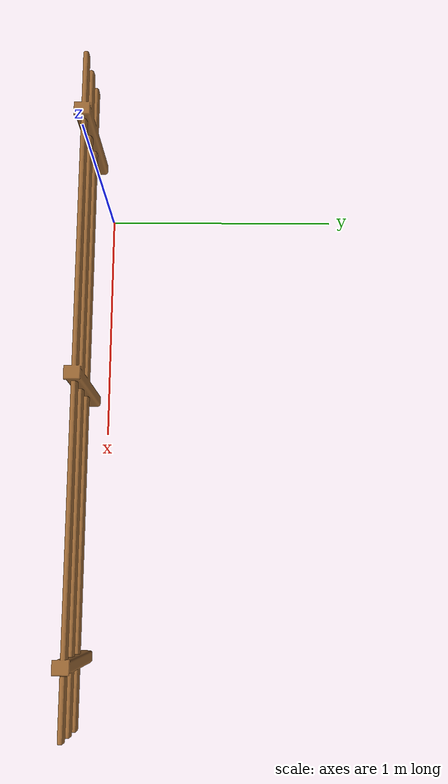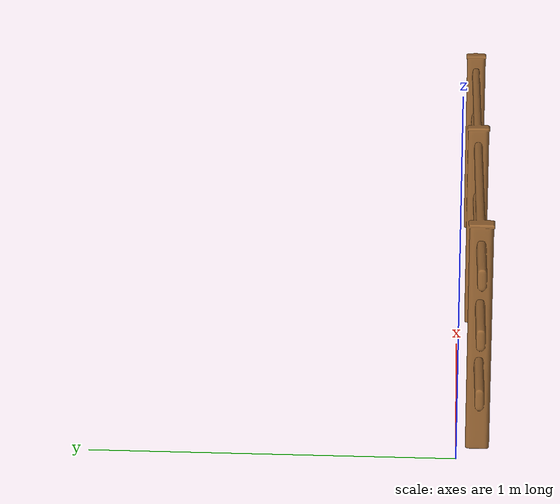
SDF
<?xml version='1.0'?>
<sdf version='1.5'>
  <model name='Fence'>
    <link name='link_0'>
      <pose frame=''>0 0 0.112 0 -0 0</pose>
      <inertial>
        <mass>1e-08</mass>
        <inertia>
          <ixx>0.166667</ixx>
          <ixy>0</ixy>
          <ixz>0</ixz>
          <iyy>0.166667</iyy>
          <iyz>0</iyz>
          <izz>0.166667</izz>
        </inertia>
        <pose frame=''>0 0 0 0 -0 0</pose>
      </inertial>
      <self_collide>0</self_collide>
      <kinematic>0</kinematic>
      <collision name='collision'>
        <geometry>
          <mesh>
            <!-- Using the same mesh for collision but modifying its scale -->
            <uri>model://fence/models/fence.obj</uri>
            <!-- Adjusted scale values: reduce x and y, increase z -->
            <scale>0.01 0.01 0.01</scale>
          </mesh>
        </geometry>
        <max_contacts>10</max_contacts>
        <surface>
          <contact>
            <ode/>
          </contact>
          <bounce/>
          <friction>
            <torsional>
              <ode/>
            </torsional>
            <ode/>
          </friction>
        </surface>
      </collision>
      <gravity>1</gravity>
      <visual name='visual'>
        <pose frame=''>0 0 0 0 -0 0</pose>
        <geometry>
          <mesh>
            <uri>model://fence/models/fence.obj</uri>
            <scale>0.01 0.01 0.01</scale>
          </mesh>
        </geometry>
        <material>
          <lighting>1</lighting>
          <script>
            <uri>file://media/materials/scripts/gazebo.material</uri>
            <name>Gazebo/Grey</name>
          </script>
	<ambient>0.6 0.4 0.2 1</ambient>  <!-- Pale brown for ambient light -->
          <diffuse>0.6 0.4 0.2 1</diffuse>  <!-- Pale brown for diffuse light -->
          <specular>0.2 0.2 0.2 1</specular> <!-- Add a slight specular reflection -->
          <emissive>0 0 0 1</emissive>
          <shader type='vertex'>
            <normal_map>__default__</normal_map>
          </shader>
        </material>
        <cast_shadows>1</cast_shadows>
        <transparency>0</transparency>
      </visual>
    </link>
    <static>0</static>
    <allow_auto_disable>1</allow_auto_disable>
  </model>
</sdf>
